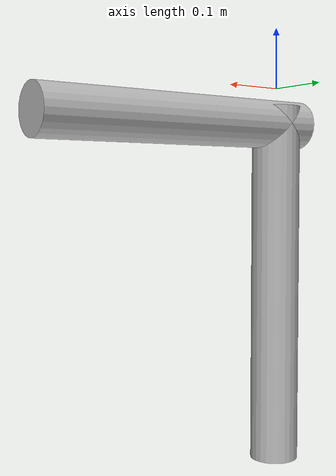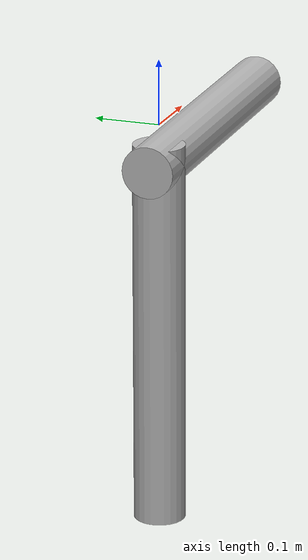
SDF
<?xml version="1.0"?>
<sdf version="1.5">
    <model name="aerial_pushing">
        <pose>0 0 0 0 0 0</pose>

        <link name="vertical">
            <pose>0 0 -0.33 0 0 0</pose>

            <gravity>0</gravity>
            <inertial>
                <pose>0.01 0.025 0.025 0 0 0</pose>
                <mass>0.00001<node name="spawn_sdf_cgo" pkg="gazebo_ros" type="spawn_model"
                    args="-x -527 -y 144 -z 5
                          -R 0 -P 0 -Y 0
                          -sdf -database cgo3_arm -model arm"/></mass>
                <inertia>
                    <ixx>1e-08</ixx>
                    <ixy>0</ixy>
                    <ixz>0</ixz>
                    <iyy>1e-08</iyy>
                    <iyz>0</iyz>
                    <izz>1e-08</izz>
                </inertia>
            </inertial>
            <collision name="collision">
                <pose>0 0 0 0 0 0</pose>
                <geometry>
                    <cylinder>
                        <radius>0.04</radius>
                        <length>0.6</length>
                    </cylinder>
                </geometry>
            </collision>
            <visual name="visual">
                <pose>0 0 0 0 0 0</pose>
                <origin rpy="0 0 0" xyz="0 0 -0.03"/>
                <geometry>
                    <cylinder>
                        <radius>0.04</radius>
                        <length>0.6</length>
                    </cylinder>
                </geometry>
            </visual>
        </link>

        <link name="horizontal">
            <pose>0 0 -0.06 0 0 0</pose>
            <gravity>0</gravity>
            <inertial>
                <pose>0.01 0.025 0.025 0 0 0</pose>
                <mass>0.00001</mass>
                <inertia>
                    <ixx>1e-08</ixx>
                    <ixy>0</ixy>
                    <ixz>0</ixz>
                    <iyy>1e-08</iyy>
                    <iyz>0</iyz>
                    <izz>1e-08</izz>
                </inertia>
            </inertial>
            <collision name="collision">
                <pose>0.2 0 0 0 1.57 0</pose>
                <geometry>
                    <cylinder>
                        <radius>0.04</radius>
                        <length>0.5</length>
                    </cylinder>
                </geometry>
            </collision>
            <visual name="visual">
                <pose>0.2 0 0 0 1.57 0</pose>
                <origin rpy="0 0 0" xyz="0 0 -0.03"/>
                <geometry>
                    <cylinder>
                        <radius>0.04</radius>
                        <length>0.5</length>
                    </cylinder>
                </geometry>
            </visual>
        </link>
    </model>
</sdf>
